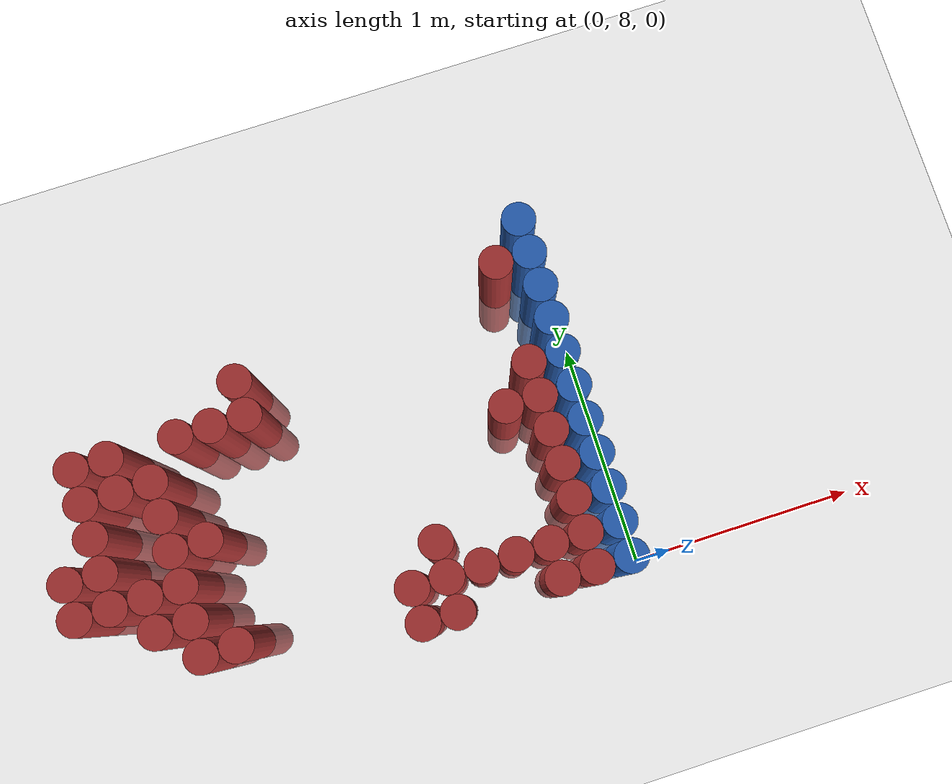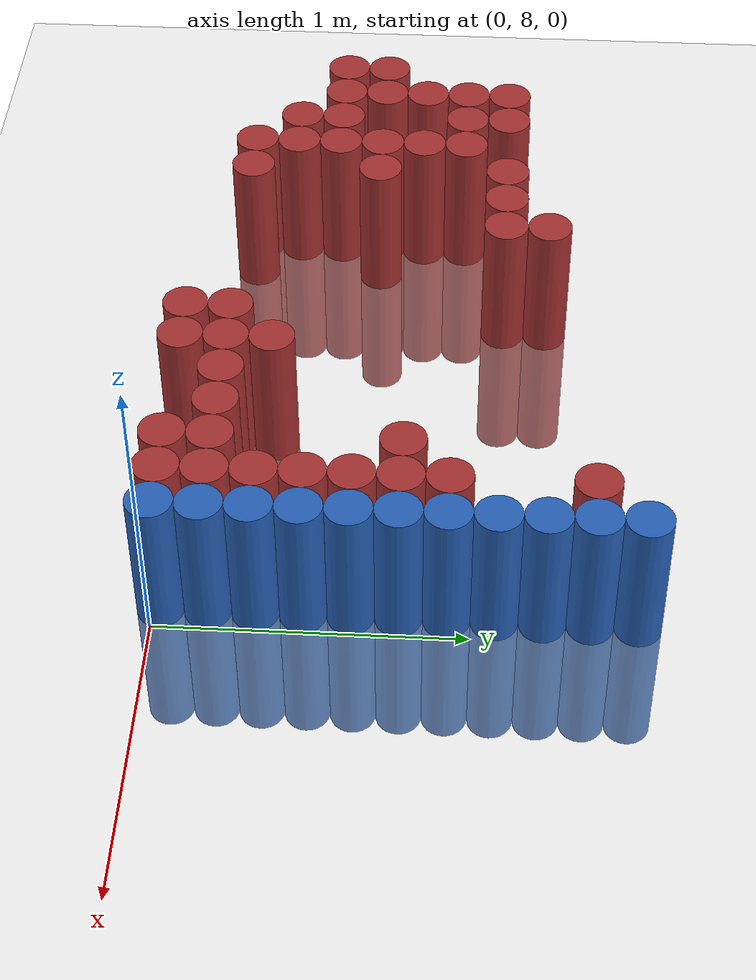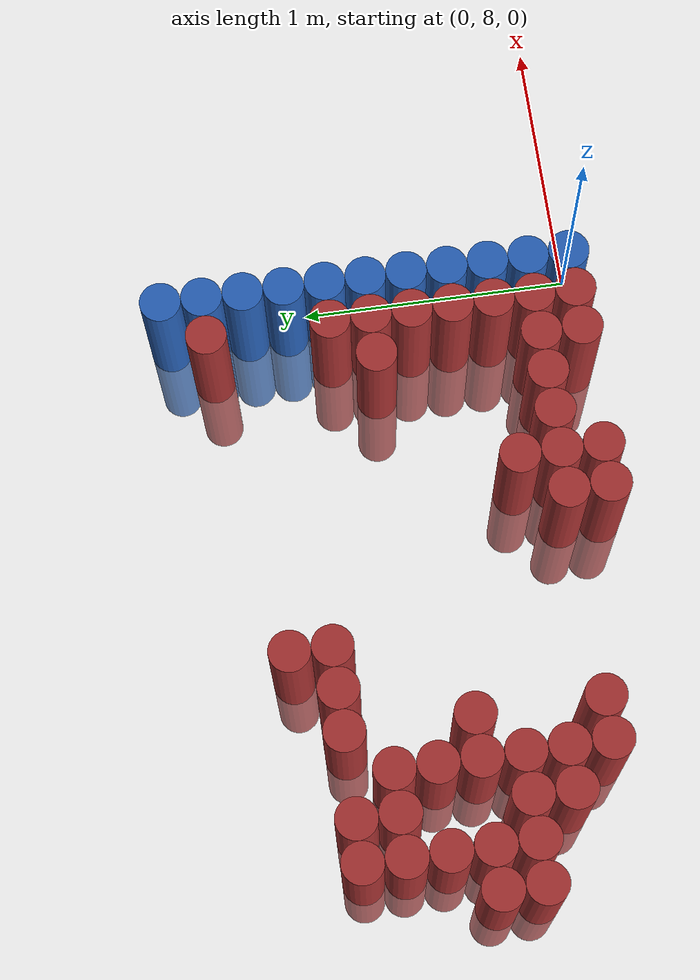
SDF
<sdf version="1.6">
 <world name="default">
  <model name="ground_plane">
   <static>1</static>
   <link name="link">
    <collision name="collision">
     <geometry><plane><normal>0 0 1</normal><size>100 100</size></plane></geometry>
     <surface><friction><ode><mu>100</mu><mu2>50</mu2></ode></friction></surface>
    </collision>
    <visual name="visual">
     <cast_shadows>0</cast_shadows>
     <geometry><plane><normal>0 0 1</normal><size>100 100</size></plane></geometry>
     <material>
      <script><uri>file://media/materials/scripts/gazebo.material</uri><name>Gazebo/Grey</name></script>
     </material>
    </visual>
   </link>
  </model>
  <model name="unit_cylinder_174">
   <static>1</static>
   <pose>-2.325000 8.475000 0.000000 0.000000 0.000000 0.000000</pose>
   <link name="link">
    <inertial>
     <mass>1</mass>
     <inertia><ixx>0.145833</ixx><ixy>0</ixy><ixz>0</ixz><iyy>0.145833</iyy><iyz>0</iyz><izz>0.125</izz></inertia>
    </inertial>
    <collision name="collision">
     <geometry><cylinder><radius>0.075000</radius><length>1</length></cylinder></geometry>
    </collision>
    <visual name="visual">
     <geometry><cylinder><radius>0.075000</radius><length>1</length></cylinder></geometry>
     <material>
      <ambient>0.648000 0.192000 0.192000 1</ambient>
      <diffuse>0.648000 0.192000 0.192000 1</diffuse>
     </material>
     <material>
      <script><name>Gazebo/Grey</name><uri>file://media/materials/scripts/gazebo.material</uri></script>
     </material>
    </visual>
   </link>
  </model>
  <model name="unit_cylinder_175">
   <static>1</static>
   <pose>-2.325000 8.625000 0.000000 0.000000 0.000000 0.000000</pose>
   <link name="link">
    <inertial>
     <mass>1</mass>
     <inertia><ixx>0.145833</ixx><ixy>0</ixy><ixz>0</ixz><iyy>0.145833</iyy><iyz>0</iyz><izz>0.125</izz></inertia>
    </inertial>
    <collision name="collision">
     <geometry><cylinder><radius>0.075000</radius><length>1</length></cylinder></geometry>
    </collision>
    <visual name="visual">
     <geometry><cylinder><radius>0.075000</radius><length>1</length></cylinder></geometry>
     <material>
      <ambient>0.648000 0.192000 0.192000 1</ambient>
      <diffuse>0.648000 0.192000 0.192000 1</diffuse>
     </material>
     <material>
      <script><name>Gazebo/Grey</name><uri>file://media/materials/scripts/gazebo.material</uri></script>
     </material>
    </visual>
   </link>
  </model>
  <model name="unit_cylinder_179">
   <static>1</static>
   <pose>-2.175000 8.475000 0.000000 0.000000 0.000000 0.000000</pose>
   <link name="link">
    <inertial>
     <mass>1</mass>
     <inertia><ixx>0.145833</ixx><ixy>0</ixy><ixz>0</ixz><iyy>0.145833</iyy><iyz>0</iyz><izz>0.125</izz></inertia>
    </inertial>
    <collision name="collision">
     <geometry><cylinder><radius>0.075000</radius><length>1</length></cylinder></geometry>
    </collision>
    <visual name="visual">
     <geometry><cylinder><radius>0.075000</radius><length>1</length></cylinder></geometry>
     <material>
      <ambient>0.648000 0.192000 0.192000 1</ambient>
      <diffuse>0.648000 0.192000 0.192000 1</diffuse>
     </material>
     <material>
      <script><name>Gazebo/Grey</name><uri>file://media/materials/scripts/gazebo.material</uri></script>
     </material>
    </visual>
   </link>
  </model>
  <model name="unit_cylinder_180">
   <static>1</static>
   <pose>-2.175000 8.625000 0.000000 0.000000 0.000000 0.000000</pose>
   <link name="link">
    <inertial>
     <mass>1</mass>
     <inertia><ixx>0.145833</ixx><ixy>0</ixy><ixz>0</ixz><iyy>0.145833</iyy><iyz>0</iyz><izz>0.125</izz></inertia>
    </inertial>
    <collision name="collision">
     <geometry><cylinder><radius>0.075000</radius><length>1</length></cylinder></geometry>
    </collision>
    <visual name="visual">
     <geometry><cylinder><radius>0.075000</radius><length>1</length></cylinder></geometry>
     <material>
      <ambient>0.648000 0.192000 0.192000 1</ambient>
      <diffuse>0.648000 0.192000 0.192000 1</diffuse>
     </material>
     <material>
      <script><name>Gazebo/Grey</name><uri>file://media/materials/scripts/gazebo.material</uri></script>
     </material>
    </visual>
   </link>
  </model>
  <model name="unit_cylinder_181">
   <static>1</static>
   <pose>-2.175000 8.775000 0.000000 0.000000 0.000000 0.000000</pose>
   <link name="link">
    <inertial>
     <mass>1</mass>
     <inertia><ixx>0.145833</ixx><ixy>0</ixy><ixz>0</ixz><iyy>0.145833</iyy><iyz>0</iyz><izz>0.125</izz></inertia>
    </inertial>
    <collision name="collision">
     <geometry><cylinder><radius>0.075000</radius><length>1</length></cylinder></geometry>
    </collision>
    <visual name="visual">
     <geometry><cylinder><radius>0.075000</radius><length>1</length></cylinder></geometry>
     <material>
      <ambient>0.648000 0.192000 0.192000 1</ambient>
      <diffuse>0.648000 0.192000 0.192000 1</diffuse>
     </material>
     <material>
      <script><name>Gazebo/Grey</name><uri>file://media/materials/scripts/gazebo.material</uri></script>
     </material>
    </visual>
   </link>
  </model>
  <model name="unit_cylinder_182">
   <static>1</static>
   <pose>-2.175000 8.925000 0.000000 0.000000 0.000000 0.000000</pose>
   <link name="link">
    <inertial>
     <mass>1</mass>
     <inertia><ixx>0.145833</ixx><ixy>0</ixy><ixz>0</ixz><iyy>0.145833</iyy><iyz>0</iyz><izz>0.125</izz></inertia>
    </inertial>
    <collision name="collision">
     <geometry><cylinder><radius>0.075000</radius><length>1</length></cylinder></geometry>
    </collision>
    <visual name="visual">
     <geometry><cylinder><radius>0.075000</radius><length>1</length></cylinder></geometry>
     <material>
      <ambient>0.648000 0.192000 0.192000 1</ambient>
      <diffuse>0.648000 0.192000 0.192000 1</diffuse>
     </material>
     <material>
      <script><name>Gazebo/Grey</name><uri>file://media/materials/scripts/gazebo.material</uri></script>
     </material>
    </visual>
   </link>
  </model>
  <model name="unit_cylinder_183">
   <static>1</static>
   <pose>-2.175000 9.075000 0.000000 0.000000 0.000000 0.000000</pose>
   <link name="link">
    <inertial>
     <mass>1</mass>
     <inertia><ixx>0.145833</ixx><ixy>0</ixy><ixz>0</ixz><iyy>0.145833</iyy><iyz>0</iyz><izz>0.125</izz></inertia>
    </inertial>
    <collision name="collision">
     <geometry><cylinder><radius>0.075000</radius><length>1</length></cylinder></geometry>
    </collision>
    <visual name="visual">
     <geometry><cylinder><radius>0.075000</radius><length>1</length></cylinder></geometry>
     <material>
      <ambient>0.648000 0.192000 0.192000 1</ambient>
      <diffuse>0.648000 0.192000 0.192000 1</diffuse>
     </material>
     <material>
      <script><name>Gazebo/Grey</name><uri>file://media/materials/scripts/gazebo.material</uri></script>
     </material>
    </visual>
   </link>
  </model>
  <model name="unit_cylinder_186">
   <static>1</static>
   <pose>-2.025000 8.325000 0.000000 0.000000 0.000000 0.000000</pose>
   <link name="link">
    <inertial>
     <mass>1</mass>
     <inertia><ixx>0.145833</ixx><ixy>0</ixy><ixz>0</ixz><iyy>0.145833</iyy><iyz>0</iyz><izz>0.125</izz></inertia>
    </inertial>
    <collision name="collision">
     <geometry><cylinder><radius>0.075000</radius><length>1</length></cylinder></geometry>
    </collision>
    <visual name="visual">
     <geometry><cylinder><radius>0.075000</radius><length>1</length></cylinder></geometry>
     <material>
      <ambient>0.648000 0.192000 0.192000 1</ambient>
      <diffuse>0.648000 0.192000 0.192000 1</diffuse>
     </material>
     <material>
      <script><name>Gazebo/Grey</name><uri>file://media/materials/scripts/gazebo.material</uri></script>
     </material>
    </visual>
   </link>
  </model>
  <model name="unit_cylinder_187">
   <static>1</static>
   <pose>-2.025000 8.475000 0.000000 0.000000 0.000000 0.000000</pose>
   <link name="link">
    <inertial>
     <mass>1</mass>
     <inertia><ixx>0.145833</ixx><ixy>0</ixy><ixz>0</ixz><iyy>0.145833</iyy><iyz>0</iyz><izz>0.125</izz></inertia>
    </inertial>
    <collision name="collision">
     <geometry><cylinder><radius>0.075000</radius><length>1</length></cylinder></geometry>
    </collision>
    <visual name="visual">
     <geometry><cylinder><radius>0.075000</radius><length>1</length></cylinder></geometry>
     <material>
      <ambient>0.648000 0.192000 0.192000 1</ambient>
      <diffuse>0.648000 0.192000 0.192000 1</diffuse>
     </material>
     <material>
      <script><name>Gazebo/Grey</name><uri>file://media/materials/scripts/gazebo.material</uri></script>
     </material>
    </visual>
   </link>
  </model>
  <model name="unit_cylinder_188">
   <static>1</static>
   <pose>-2.025000 8.925000 0.000000 0.000000 0.000000 0.000000</pose>
   <link name="link">
    <inertial>
     <mass>1</mass>
     <inertia><ixx>0.145833</ixx><ixy>0</ixy><ixz>0</ixz><iyy>0.145833</iyy><iyz>0</iyz><izz>0.125</izz></inertia>
    </inertial>
    <collision name="collision">
     <geometry><cylinder><radius>0.075000</radius><length>1</length></cylinder></geometry>
    </collision>
    <visual name="visual">
     <geometry><cylinder><radius>0.075000</radius><length>1</length></cylinder></geometry>
     <material>
      <ambient>0.648000 0.192000 0.192000 1</ambient>
      <diffuse>0.648000 0.192000 0.192000 1</diffuse>
     </material>
     <material>
      <script><name>Gazebo/Grey</name><uri>file://media/materials/scripts/gazebo.material</uri></script>
     </material>
    </visual>
   </link>
  </model>
  <model name="unit_cylinder_189">
   <static>1</static>
   <pose>-2.025000 9.075000 0.000000 0.000000 0.000000 0.000000</pose>
   <link name="link">
    <inertial>
     <mass>1</mass>
     <inertia><ixx>0.145833</ixx><ixy>0</ixy><ixz>0</ixz><iyy>0.145833</iyy><iyz>0</iyz><izz>0.125</izz></inertia>
    </inertial>
    <collision name="collision">
     <geometry><cylinder><radius>0.075000</radius><length>1</length></cylinder></geometry>
    </collision>
    <visual name="visual">
     <geometry><cylinder><radius>0.075000</radius><length>1</length></cylinder></geometry>
     <material>
      <ambient>0.648000 0.192000 0.192000 1</ambient>
      <diffuse>0.648000 0.192000 0.192000 1</diffuse>
     </material>
     <material>
      <script><name>Gazebo/Grey</name><uri>file://media/materials/scripts/gazebo.material</uri></script>
     </material>
    </visual>
   </link>
  </model>
  <model name="unit_cylinder_193">
   <static>1</static>
   <pose>-1.875000 8.175000 0.000000 0.000000 0.000000 0.000000</pose>
   <link name="link">
    <inertial>
     <mass>1</mass>
     <inertia><ixx>0.145833</ixx><ixy>0</ixy><ixz>0</ixz><iyy>0.145833</iyy><iyz>0</iyz><izz>0.125</izz></inertia>
    </inertial>
    <collision name="collision">
     <geometry><cylinder><radius>0.075000</radius><length>1</length></cylinder></geometry>
    </collision>
    <visual name="visual">
     <geometry><cylinder><radius>0.075000</radius><length>1</length></cylinder></geometry>
     <material>
      <ambient>0.648000 0.192000 0.192000 1</ambient>
      <diffuse>0.648000 0.192000 0.192000 1</diffuse>
     </material>
     <material>
      <script><name>Gazebo/Grey</name><uri>file://media/materials/scripts/gazebo.material</uri></script>
     </material>
    </visual>
   </link>
  </model>
  <model name="unit_cylinder_194">
   <static>1</static>
   <pose>-1.875000 8.325000 0.000000 0.000000 0.000000 0.000000</pose>
   <link name="link">
    <inertial>
     <mass>1</mass>
     <inertia><ixx>0.145833</ixx><ixy>0</ixy><ixz>0</ixz><iyy>0.145833</iyy><iyz>0</iyz><izz>0.125</izz></inertia>
    </inertial>
    <collision name="collision">
     <geometry><cylinder><radius>0.075000</radius><length>1</length></cylinder></geometry>
    </collision>
    <visual name="visual">
     <geometry><cylinder><radius>0.075000</radius><length>1</length></cylinder></geometry>
     <material>
      <ambient>0.648000 0.192000 0.192000 1</ambient>
      <diffuse>0.648000 0.192000 0.192000 1</diffuse>
     </material>
     <material>
      <script><name>Gazebo/Grey</name><uri>file://media/materials/scripts/gazebo.material</uri></script>
     </material>
    </visual>
   </link>
  </model>
  <model name="unit_cylinder_195">
   <static>1</static>
   <pose>-1.875000 8.475000 0.000000 0.000000 0.000000 0.000000</pose>
   <link name="link">
    <inertial>
     <mass>1</mass>
     <inertia><ixx>0.145833</ixx><ixy>0</ixy><ixz>0</ixz><iyy>0.145833</iyy><iyz>0</iyz><izz>0.125</izz></inertia>
    </inertial>
    <collision name="collision">
     <geometry><cylinder><radius>0.075000</radius><length>1</length></cylinder></geometry>
    </collision>
    <visual name="visual">
     <geometry><cylinder><radius>0.075000</radius><length>1</length></cylinder></geometry>
     <material>
      <ambient>0.648000 0.192000 0.192000 1</ambient>
      <diffuse>0.648000 0.192000 0.192000 1</diffuse>
     </material>
     <material>
      <script><name>Gazebo/Grey</name><uri>file://media/materials/scripts/gazebo.material</uri></script>
     </material>
    </visual>
   </link>
  </model>
  <model name="unit_cylinder_196">
   <static>1</static>
   <pose>-1.875000 8.625000 0.000000 0.000000 0.000000 0.000000</pose>
   <link name="link">
    <inertial>
     <mass>1</mass>
     <inertia><ixx>0.145833</ixx><ixy>0</ixy><ixz>0</ixz><iyy>0.145833</iyy><iyz>0</iyz><izz>0.125</izz></inertia>
    </inertial>
    <collision name="collision">
     <geometry><cylinder><radius>0.075000</radius><length>1</length></cylinder></geometry>
    </collision>
    <visual name="visual">
     <geometry><cylinder><radius>0.075000</radius><length>1</length></cylinder></geometry>
     <material>
      <ambient>0.648000 0.192000 0.192000 1</ambient>
      <diffuse>0.648000 0.192000 0.192000 1</diffuse>
     </material>
     <material>
      <script><name>Gazebo/Grey</name><uri>file://media/materials/scripts/gazebo.material</uri></script>
     </material>
    </visual>
   </link>
  </model>
  <model name="unit_cylinder_197">
   <static>1</static>
   <pose>-1.875000 8.775000 0.000000 0.000000 0.000000 0.000000</pose>
   <link name="link">
    <inertial>
     <mass>1</mass>
     <inertia><ixx>0.145833</ixx><ixy>0</ixy><ixz>0</ixz><iyy>0.145833</iyy><iyz>0</iyz><izz>0.125</izz></inertia>
    </inertial>
    <collision name="collision">
     <geometry><cylinder><radius>0.075000</radius><length>1</length></cylinder></geometry>
    </collision>
    <visual name="visual">
     <geometry><cylinder><radius>0.075000</radius><length>1</length></cylinder></geometry>
     <material>
      <ambient>0.648000 0.192000 0.192000 1</ambient>
      <diffuse>0.648000 0.192000 0.192000 1</diffuse>
     </material>
     <material>
      <script><name>Gazebo/Grey</name><uri>file://media/materials/scripts/gazebo.material</uri></script>
     </material>
    </visual>
   </link>
  </model>
  <model name="unit_cylinder_198">
   <static>1</static>
   <pose>-1.875000 8.925000 0.000000 0.000000 0.000000 0.000000</pose>
   <link name="link">
    <inertial>
     <mass>1</mass>
     <inertia><ixx>0.145833</ixx><ixy>0</ixy><ixz>0</ixz><iyy>0.145833</iyy><iyz>0</iyz><izz>0.125</izz></inertia>
    </inertial>
    <collision name="collision">
     <geometry><cylinder><radius>0.075000</radius><length>1</length></cylinder></geometry>
    </collision>
    <visual name="visual">
     <geometry><cylinder><radius>0.075000</radius><length>1</length></cylinder></geometry>
     <material>
      <ambient>0.648000 0.192000 0.192000 1</ambient>
      <diffuse>0.648000 0.192000 0.192000 1</diffuse>
     </material>
     <material>
      <script><name>Gazebo/Grey</name><uri>file://media/materials/scripts/gazebo.material</uri></script>
     </material>
    </visual>
   </link>
  </model>
  <model name="unit_cylinder_203">
   <static>1</static>
   <pose>-1.725000 8.175000 0.000000 0.000000 0.000000 0.000000</pose>
   <link name="link">
    <inertial>
     <mass>1</mass>
     <inertia><ixx>0.145833</ixx><ixy>0</ixy><ixz>0</ixz><iyy>0.145833</iyy><iyz>0</iyz><izz>0.125</izz></inertia>
    </inertial>
    <collision name="collision">
     <geometry><cylinder><radius>0.075000</radius><length>1</length></cylinder></geometry>
    </collision>
    <visual name="visual">
     <geometry><cylinder><radius>0.075000</radius><length>1</length></cylinder></geometry>
     <material>
      <ambient>0.648000 0.192000 0.192000 1</ambient>
      <diffuse>0.648000 0.192000 0.192000 1</diffuse>
     </material>
     <material>
      <script><name>Gazebo/Grey</name><uri>file://media/materials/scripts/gazebo.material</uri></script>
     </material>
    </visual>
   </link>
  </model>
  <model name="unit_cylinder_204">
   <static>1</static>
   <pose>-1.725000 8.625000 0.000000 0.000000 0.000000 0.000000</pose>
   <link name="link">
    <inertial>
     <mass>1</mass>
     <inertia><ixx>0.145833</ixx><ixy>0</ixy><ixz>0</ixz><iyy>0.145833</iyy><iyz>0</iyz><izz>0.125</izz></inertia>
    </inertial>
    <collision name="collision">
     <geometry><cylinder><radius>0.075000</radius><length>1</length></cylinder></geometry>
    </collision>
    <visual name="visual">
     <geometry><cylinder><radius>0.075000</radius><length>1</length></cylinder></geometry>
     <material>
      <ambient>0.648000 0.192000 0.192000 1</ambient>
      <diffuse>0.648000 0.192000 0.192000 1</diffuse>
     </material>
     <material>
      <script><name>Gazebo/Grey</name><uri>file://media/materials/scripts/gazebo.material</uri></script>
     </material>
    </visual>
   </link>
  </model>
  <model name="unit_cylinder_205">
   <static>1</static>
   <pose>-1.725000 9.075000 0.000000 0.000000 0.000000 0.000000</pose>
   <link name="link">
    <inertial>
     <mass>1</mass>
     <inertia><ixx>0.145833</ixx><ixy>0</ixy><ixz>0</ixz><iyy>0.145833</iyy><iyz>0</iyz><izz>0.125</izz></inertia>
    </inertial>
    <collision name="collision">
     <geometry><cylinder><radius>0.075000</radius><length>1</length></cylinder></geometry>
    </collision>
    <visual name="visual">
     <geometry><cylinder><radius>0.075000</radius><length>1</length></cylinder></geometry>
     <material>
      <ambient>0.648000 0.192000 0.192000 1</ambient>
      <diffuse>0.648000 0.192000 0.192000 1</diffuse>
     </material>
     <material>
      <script><name>Gazebo/Grey</name><uri>file://media/materials/scripts/gazebo.material</uri></script>
     </material>
    </visual>
   </link>
  </model>
  <model name="unit_cylinder_210">
   <static>1</static>
   <pose>-1.575000 9.075000 0.000000 0.000000 0.000000 0.000000</pose>
   <link name="link">
    <inertial>
     <mass>1</mass>
     <inertia><ixx>0.145833</ixx><ixy>0</ixy><ixz>0</ixz><iyy>0.145833</iyy><iyz>0</iyz><izz>0.125</izz></inertia>
    </inertial>
    <collision name="collision">
     <geometry><cylinder><radius>0.075000</radius><length>1</length></cylinder></geometry>
    </collision>
    <visual name="visual">
     <geometry><cylinder><radius>0.075000</radius><length>1</length></cylinder></geometry>
     <material>
      <ambient>0.648000 0.192000 0.192000 1</ambient>
      <diffuse>0.648000 0.192000 0.192000 1</diffuse>
     </material>
     <material>
      <script><name>Gazebo/Grey</name><uri>file://media/materials/scripts/gazebo.material</uri></script>
     </material>
    </visual>
   </link>
  </model>
  <model name="unit_cylinder_216">
   <static>1</static>
   <pose>-1.425000 9.075000 0.000000 0.000000 0.000000 0.000000</pose>
   <link name="link">
    <inertial>
     <mass>1</mass>
     <inertia><ixx>0.145833</ixx><ixy>0</ixy><ixz>0</ixz><iyy>0.145833</iyy><iyz>0</iyz><izz>0.125</izz></inertia>
    </inertial>
    <collision name="collision">
     <geometry><cylinder><radius>0.075000</radius><length>1</length></cylinder></geometry>
    </collision>
    <visual name="visual">
     <geometry><cylinder><radius>0.075000</radius><length>1</length></cylinder></geometry>
     <material>
      <ambient>0.648000 0.192000 0.192000 1</ambient>
      <diffuse>0.648000 0.192000 0.192000 1</diffuse>
     </material>
     <material>
      <script><name>Gazebo/Grey</name><uri>file://media/materials/scripts/gazebo.material</uri></script>
     </material>
    </visual>
   </link>
  </model>
  <model name="unit_cylinder_217">
   <static>1</static>
   <pose>-1.425000 9.225000 0.000000 0.000000 0.000000 0.000000</pose>
   <link name="link">
    <inertial>
     <mass>1</mass>
     <inertia><ixx>0.145833</ixx><ixy>0</ixy><ixz>0</ixz><iyy>0.145833</iyy><iyz>0</iyz><izz>0.125</izz></inertia>
    </inertial>
    <collision name="collision">
     <geometry><cylinder><radius>0.075000</radius><length>1</length></cylinder></geometry>
    </collision>
    <visual name="visual">
     <geometry><cylinder><radius>0.075000</radius><length>1</length></cylinder></geometry>
     <material>
      <ambient>0.648000 0.192000 0.192000 1</ambient>
      <diffuse>0.648000 0.192000 0.192000 1</diffuse>
     </material>
     <material>
      <script><name>Gazebo/Grey</name><uri>file://media/materials/scripts/gazebo.material</uri></script>
     </material>
    </visual>
   </link>
  </model>
  <model name="unit_cylinder_232">
   <static>1</static>
   <pose>-0.975000 8.025000 0.000000 0.000000 0.000000 0.000000</pose>
   <link name="link">
    <inertial>
     <mass>1</mass>
     <inertia><ixx>0.145833</ixx><ixy>0</ixy><ixz>0</ixz><iyy>0.145833</iyy><iyz>0</iyz><izz>0.125</izz></inertia>
    </inertial>
    <collision name="collision">
     <geometry><cylinder><radius>0.075000</radius><length>1</length></cylinder></geometry>
    </collision>
    <visual name="visual">
     <geometry><cylinder><radius>0.075000</radius><length>1</length></cylinder></geometry>
     <material>
      <ambient>0.648000 0.192000 0.192000 1</ambient>
      <diffuse>0.648000 0.192000 0.192000 1</diffuse>
     </material>
     <material>
      <script><name>Gazebo/Grey</name><uri>file://media/materials/scripts/gazebo.material</uri></script>
     </material>
    </visual>
   </link>
  </model>
  <model name="unit_cylinder_233">
   <static>1</static>
   <pose>-0.975000 8.175000 0.000000 0.000000 0.000000 0.000000</pose>
   <link name="link">
    <inertial>
     <mass>1</mass>
     <inertia><ixx>0.145833</ixx><ixy>0</ixy><ixz>0</ixz><iyy>0.145833</iyy><iyz>0</iyz><izz>0.125</izz></inertia>
    </inertial>
    <collision name="collision">
     <geometry><cylinder><radius>0.075000</radius><length>1</length></cylinder></geometry>
    </collision>
    <visual name="visual">
     <geometry><cylinder><radius>0.075000</radius><length>1</length></cylinder></geometry>
     <material>
      <ambient>0.648000 0.192000 0.192000 1</ambient>
      <diffuse>0.648000 0.192000 0.192000 1</diffuse>
     </material>
     <material>
      <script><name>Gazebo/Grey</name><uri>file://media/materials/scripts/gazebo.material</uri></script>
     </material>
    </visual>
   </link>
  </model>
  <model name="unit_cylinder_239">
   <static>1</static>
   <pose>-0.825000 8.025000 0.000000 0.000000 0.000000 0.000000</pose>
   <link name="link">
    <inertial>
     <mass>1</mass>
     <inertia><ixx>0.145833</ixx><ixy>0</ixy><ixz>0</ixz><iyy>0.145833</iyy><iyz>0</iyz><izz>0.125</izz></inertia>
    </inertial>
    <collision name="collision">
     <geometry><cylinder><radius>0.075000</radius><length>1</length></cylinder></geometry>
    </collision>
    <visual name="visual">
     <geometry><cylinder><radius>0.075000</radius><length>1</length></cylinder></geometry>
     <material>
      <ambient>0.648000 0.192000 0.192000 1</ambient>
      <diffuse>0.648000 0.192000 0.192000 1</diffuse>
     </material>
     <material>
      <script><name>Gazebo/Grey</name><uri>file://media/materials/scripts/gazebo.material</uri></script>
     </material>
    </visual>
   </link>
  </model>
  <model name="unit_cylinder_240">
   <static>1</static>
   <pose>-0.825000 8.175000 0.000000 0.000000 0.000000 0.000000</pose>
   <link name="link">
    <inertial>
     <mass>1</mass>
     <inertia><ixx>0.145833</ixx><ixy>0</ixy><ixz>0</ixz><iyy>0.145833</iyy><iyz>0</iyz><izz>0.125</izz></inertia>
    </inertial>
    <collision name="collision">
     <geometry><cylinder><radius>0.075000</radius><length>1</length></cylinder></geometry>
    </collision>
    <visual name="visual">
     <geometry><cylinder><radius>0.075000</radius><length>1</length></cylinder></geometry>
     <material>
      <ambient>0.648000 0.192000 0.192000 1</ambient>
      <diffuse>0.648000 0.192000 0.192000 1</diffuse>
     </material>
     <material>
      <script><name>Gazebo/Grey</name><uri>file://media/materials/scripts/gazebo.material</uri></script>
     </material>
    </visual>
   </link>
  </model>
  <model name="unit_cylinder_241">
   <static>1</static>
   <pose>-0.825000 8.325000 0.000000 0.000000 0.000000 0.000000</pose>
   <link name="link">
    <inertial>
     <mass>1</mass>
     <inertia><ixx>0.145833</ixx><ixy>0</ixy><ixz>0</ixz><iyy>0.145833</iyy><iyz>0</iyz><izz>0.125</izz></inertia>
    </inertial>
    <collision name="collision">
     <geometry><cylinder><radius>0.075000</radius><length>1</length></cylinder></geometry>
    </collision>
    <visual name="visual">
     <geometry><cylinder><radius>0.075000</radius><length>1</length></cylinder></geometry>
     <material>
      <ambient>0.648000 0.192000 0.192000 1</ambient>
      <diffuse>0.648000 0.192000 0.192000 1</diffuse>
     </material>
     <material>
      <script><name>Gazebo/Grey</name><uri>file://media/materials/scripts/gazebo.material</uri></script>
     </material>
    </visual>
   </link>
  </model>
  <model name="unit_cylinder_246">
   <static>1</static>
   <pose>-0.675000 8.175000 0.000000 0.000000 0.000000 0.000000</pose>
   <link name="link">
    <inertial>
     <mass>1</mass>
     <inertia><ixx>0.145833</ixx><ixy>0</ixy><ixz>0</ixz><iyy>0.145833</iyy><iyz>0</iyz><izz>0.125</izz></inertia>
    </inertial>
    <collision name="collision">
     <geometry><cylinder><radius>0.075000</radius><length>1</length></cylinder></geometry>
    </collision>
    <visual name="visual">
     <geometry><cylinder><radius>0.075000</radius><length>1</length></cylinder></geometry>
     <material>
      <ambient>0.648000 0.192000 0.192000 1</ambient>
      <diffuse>0.648000 0.192000 0.192000 1</diffuse>
     </material>
     <material>
      <script><name>Gazebo/Grey</name><uri>file://media/materials/scripts/gazebo.material</uri></script>
     </material>
    </visual>
   </link>
  </model>
  <model name="unit_cylinder_252">
   <static>1</static>
   <pose>-0.525000 8.175000 0.000000 0.000000 0.000000 0.000000</pose>
   <link name="link">
    <inertial>
     <mass>1</mass>
     <inertia><ixx>0.145833</ixx><ixy>0</ixy><ixz>0</ixz><iyy>0.145833</iyy><iyz>0</iyz><izz>0.125</izz></inertia>
    </inertial>
    <collision name="collision">
     <geometry><cylinder><radius>0.075000</radius><length>1</length></cylinder></geometry>
    </collision>
    <visual name="visual">
     <geometry><cylinder><radius>0.075000</radius><length>1</length></cylinder></geometry>
     <material>
      <ambient>0.648000 0.192000 0.192000 1</ambient>
      <diffuse>0.648000 0.192000 0.192000 1</diffuse>
     </material>
     <material>
      <script><name>Gazebo/Grey</name><uri>file://media/materials/scripts/gazebo.material</uri></script>
     </material>
    </visual>
   </link>
  </model>
  <model name="unit_cylinder_258">
   <static>1</static>
   <pose>-0.375000 8.025000 0.000000 0.000000 0.000000 0.000000</pose>
   <link name="link">
    <inertial>
     <mass>1</mass>
     <inertia><ixx>0.145833</ixx><ixy>0</ixy><ixz>0</ixz><iyy>0.145833</iyy><iyz>0</iyz><izz>0.125</izz></inertia>
    </inertial>
    <collision name="collision">
     <geometry><cylinder><radius>0.075000</radius><length>1</length></cylinder></geometry>
    </collision>
    <visual name="visual">
     <geometry><cylinder><radius>0.075000</radius><length>1</length></cylinder></geometry>
     <material>
      <ambient>0.648000 0.192000 0.192000 1</ambient>
      <diffuse>0.648000 0.192000 0.192000 1</diffuse>
     </material>
     <material>
      <script><name>Gazebo/Grey</name><uri>file://media/materials/scripts/gazebo.material</uri></script>
     </material>
    </visual>
   </link>
  </model>
  <model name="unit_cylinder_259">
   <static>1</static>
   <pose>-0.375000 8.175000 0.000000 0.000000 0.000000 0.000000</pose>
   <link name="link">
    <inertial>
     <mass>1</mass>
     <inertia><ixx>0.145833</ixx><ixy>0</ixy><ixz>0</ixz><iyy>0.145833</iyy><iyz>0</iyz><izz>0.125</izz></inertia>
    </inertial>
    <collision name="collision">
     <geometry><cylinder><radius>0.075000</radius><length>1</length></cylinder></geometry>
    </collision>
    <visual name="visual">
     <geometry><cylinder><radius>0.075000</radius><length>1</length></cylinder></geometry>
     <material>
      <ambient>0.648000 0.192000 0.192000 1</ambient>
      <diffuse>0.648000 0.192000 0.192000 1</diffuse>
     </material>
     <material>
      <script><name>Gazebo/Grey</name><uri>file://media/materials/scripts/gazebo.material</uri></script>
     </material>
    </visual>
   </link>
  </model>
  <model name="unit_cylinder_260">
   <static>1</static>
   <pose>-0.375000 8.775000 0.000000 0.000000 0.000000 0.000000</pose>
   <link name="link">
    <inertial>
     <mass>1</mass>
     <inertia><ixx>0.145833</ixx><ixy>0</ixy><ixz>0</ixz><iyy>0.145833</iyy><iyz>0</iyz><izz>0.125</izz></inertia>
    </inertial>
    <collision name="collision">
     <geometry><cylinder><radius>0.075000</radius><length>1</length></cylinder></geometry>
    </collision>
    <visual name="visual">
     <geometry><cylinder><radius>0.075000</radius><length>1</length></cylinder></geometry>
     <material>
      <ambient>0.648000 0.192000 0.192000 1</ambient>
      <diffuse>0.648000 0.192000 0.192000 1</diffuse>
     </material>
     <material>
      <script><name>Gazebo/Grey</name><uri>file://media/materials/scripts/gazebo.material</uri></script>
     </material>
    </visual>
   </link>
  </model>
  <model name="unit_cylinder_271">
   <static>1</static>
   <pose>-0.225000 8.025000 0.000000 0.000000 0.000000 0.000000</pose>
   <link name="link">
    <inertial>
     <mass>1</mass>
     <inertia><ixx>0.145833</ixx><ixy>0</ixy><ixz>0</ixz><iyy>0.145833</iyy><iyz>0</iyz><izz>0.125</izz></inertia>
    </inertial>
    <collision name="collision">
     <geometry><cylinder><radius>0.075000</radius><length>1</length></cylinder></geometry>
    </collision>
    <visual name="visual">
     <geometry><cylinder><radius>0.075000</radius><length>1</length></cylinder></geometry>
     <material>
      <ambient>0.648000 0.192000 0.192000 1</ambient>
      <diffuse>0.648000 0.192000 0.192000 1</diffuse>
     </material>
     <material>
      <script><name>Gazebo/Grey</name><uri>file://media/materials/scripts/gazebo.material</uri></script>
     </material>
    </visual>
   </link>
  </model>
  <model name="unit_cylinder_272">
   <static>1</static>
   <pose>-0.225000 8.175000 0.000000 0.000000 0.000000 0.000000</pose>
   <link name="link">
    <inertial>
     <mass>1</mass>
     <inertia><ixx>0.145833</ixx><ixy>0</ixy><ixz>0</ixz><iyy>0.145833</iyy><iyz>0</iyz><izz>0.125</izz></inertia>
    </inertial>
    <collision name="collision">
     <geometry><cylinder><radius>0.075000</radius><length>1</length></cylinder></geometry>
    </collision>
    <visual name="visual">
     <geometry><cylinder><radius>0.075000</radius><length>1</length></cylinder></geometry>
     <material>
      <ambient>0.648000 0.192000 0.192000 1</ambient>
      <diffuse>0.648000 0.192000 0.192000 1</diffuse>
     </material>
     <material>
      <script><name>Gazebo/Grey</name><uri>file://media/materials/scripts/gazebo.material</uri></script>
     </material>
    </visual>
   </link>
  </model>
  <model name="unit_cylinder_273">
   <static>1</static>
   <pose>-0.225000 8.325000 0.000000 0.000000 0.000000 0.000000</pose>
   <link name="link">
    <inertial>
     <mass>1</mass>
     <inertia><ixx>0.145833</ixx><ixy>0</ixy><ixz>0</ixz><iyy>0.145833</iyy><iyz>0</iyz><izz>0.125</izz></inertia>
    </inertial>
    <collision name="collision">
     <geometry><cylinder><radius>0.075000</radius><length>1</length></cylinder></geometry>
    </collision>
    <visual name="visual">
     <geometry><cylinder><radius>0.075000</radius><length>1</length></cylinder></geometry>
     <material>
      <ambient>0.648000 0.192000 0.192000 1</ambient>
      <diffuse>0.648000 0.192000 0.192000 1</diffuse>
     </material>
     <material>
      <script><name>Gazebo/Grey</name><uri>file://media/materials/scripts/gazebo.material</uri></script>
     </material>
    </visual>
   </link>
  </model>
  <model name="unit_cylinder_274">
   <static>1</static>
   <pose>-0.225000 8.475000 0.000000 0.000000 0.000000 0.000000</pose>
   <link name="link">
    <inertial>
     <mass>1</mass>
     <inertia><ixx>0.145833</ixx><ixy>0</ixy><ixz>0</ixz><iyy>0.145833</iyy><iyz>0</iyz><izz>0.125</izz></inertia>
    </inertial>
    <collision name="collision">
     <geometry><cylinder><radius>0.075000</radius><length>1</length></cylinder></geometry>
    </collision>
    <visual name="visual">
     <geometry><cylinder><radius>0.075000</radius><length>1</length></cylinder></geometry>
     <material>
      <ambient>0.648000 0.192000 0.192000 1</ambient>
      <diffuse>0.648000 0.192000 0.192000 1</diffuse>
     </material>
     <material>
      <script><name>Gazebo/Grey</name><uri>file://media/materials/scripts/gazebo.material</uri></script>
     </material>
    </visual>
   </link>
  </model>
  <model name="unit_cylinder_275">
   <static>1</static>
   <pose>-0.225000 8.625000 0.000000 0.000000 0.000000 0.000000</pose>
   <link name="link">
    <inertial>
     <mass>1</mass>
     <inertia><ixx>0.145833</ixx><ixy>0</ixy><ixz>0</ixz><iyy>0.145833</iyy><iyz>0</iyz><izz>0.125</izz></inertia>
    </inertial>
    <collision name="collision">
     <geometry><cylinder><radius>0.075000</radius><length>1</length></cylinder></geometry>
    </collision>
    <visual name="visual">
     <geometry><cylinder><radius>0.075000</radius><length>1</length></cylinder></geometry>
     <material>
      <ambient>0.648000 0.192000 0.192000 1</ambient>
      <diffuse>0.648000 0.192000 0.192000 1</diffuse>
     </material>
     <material>
      <script><name>Gazebo/Grey</name><uri>file://media/materials/scripts/gazebo.material</uri></script>
     </material>
    </visual>
   </link>
  </model>
  <model name="unit_cylinder_276">
   <static>1</static>
   <pose>-0.225000 8.775000 0.000000 0.000000 0.000000 0.000000</pose>
   <link name="link">
    <inertial>
     <mass>1</mass>
     <inertia><ixx>0.145833</ixx><ixy>0</ixy><ixz>0</ixz><iyy>0.145833</iyy><iyz>0</iyz><izz>0.125</izz></inertia>
    </inertial>
    <collision name="collision">
     <geometry><cylinder><radius>0.075000</radius><length>1</length></cylinder></geometry>
    </collision>
    <visual name="visual">
     <geometry><cylinder><radius>0.075000</radius><length>1</length></cylinder></geometry>
     <material>
      <ambient>0.648000 0.192000 0.192000 1</ambient>
      <diffuse>0.648000 0.192000 0.192000 1</diffuse>
     </material>
     <material>
      <script><name>Gazebo/Grey</name><uri>file://media/materials/scripts/gazebo.material</uri></script>
     </material>
    </visual>
   </link>
  </model>
  <model name="unit_cylinder_277">
   <static>1</static>
   <pose>-0.225000 8.925000 0.000000 0.000000 0.000000 0.000000</pose>
   <link name="link">
    <inertial>
     <mass>1</mass>
     <inertia><ixx>0.145833</ixx><ixy>0</ixy><ixz>0</ixz><iyy>0.145833</iyy><iyz>0</iyz><izz>0.125</izz></inertia>
    </inertial>
    <collision name="collision">
     <geometry><cylinder><radius>0.075000</radius><length>1</length></cylinder></geometry>
    </collision>
    <visual name="visual">
     <geometry><cylinder><radius>0.075000</radius><length>1</length></cylinder></geometry>
     <material>
      <ambient>0.648000 0.192000 0.192000 1</ambient>
      <diffuse>0.648000 0.192000 0.192000 1</diffuse>
     </material>
     <material>
      <script><name>Gazebo/Grey</name><uri>file://media/materials/scripts/gazebo.material</uri></script>
     </material>
    </visual>
   </link>
  </model>
  <model name="unit_cylinder_278">
   <static>1</static>
   <pose>-0.225000 9.375000 0.000000 0.000000 0.000000 0.000000</pose>
   <link name="link">
    <inertial>
     <mass>1</mass>
     <inertia><ixx>0.145833</ixx><ixy>0</ixy><ixz>0</ixz><iyy>0.145833</iyy><iyz>0</iyz><izz>0.125</izz></inertia>
    </inertial>
    <collision name="collision">
     <geometry><cylinder><radius>0.075000</radius><length>1</length></cylinder></geometry>
    </collision>
    <visual name="visual">
     <geometry><cylinder><radius>0.075000</radius><length>1</length></cylinder></geometry>
     <material>
      <ambient>0.648000 0.192000 0.192000 1</ambient>
      <diffuse>0.648000 0.192000 0.192000 1</diffuse>
     </material>
     <material>
      <script><name>Gazebo/Grey</name><uri>file://media/materials/scripts/gazebo.material</uri></script>
     </material>
    </visual>
   </link>
  </model>
  <model name="unit_cylinder_298">
   <static>1</static>
   <pose>-0.075000 8.025000 0.000000 0.000000 0.000000 0.000000</pose>
   <link name="link">
    <inertial>
     <mass>1</mass>
     <inertia><ixx>0.145833</ixx><ixy>0</ixy><ixz>0</ixz><iyy>0.145833</iyy><iyz>0</iyz><izz>0.125</izz></inertia>
    </inertial>
    <collision name="collision">
     <geometry><cylinder><radius>0.075000</radius><length>1</length></cylinder></geometry>
    </collision>
    <visual name="visual">
     <geometry><cylinder><radius>0.075000</radius><length>1</length></cylinder></geometry>
     <material>
      <ambient>0.152000 0.379000 0.720000 1</ambient>
      <diffuse>0.152000 0.379000 0.720000 1</diffuse>
     </material>
     <material>
      <script><name>Gazebo/Grey</name><uri>file://media/materials/scripts/gazebo.material</uri></script>
     </material>
    </visual>
   </link>
  </model>
  <model name="unit_cylinder_299">
   <static>1</static>
   <pose>-0.075000 8.175000 0.000000 0.000000 0.000000 0.000000</pose>
   <link name="link">
    <inertial>
     <mass>1</mass>
     <inertia><ixx>0.145833</ixx><ixy>0</ixy><ixz>0</ixz><iyy>0.145833</iyy><iyz>0</iyz><izz>0.125</izz></inertia>
    </inertial>
    <collision name="collision">
     <geometry><cylinder><radius>0.075000</radius><length>1</length></cylinder></geometry>
    </collision>
    <visual name="visual">
     <geometry><cylinder><radius>0.075000</radius><length>1</length></cylinder></geometry>
     <material>
      <ambient>0.152000 0.379000 0.720000 1</ambient>
      <diffuse>0.152000 0.379000 0.720000 1</diffuse>
     </material>
     <material>
      <script><name>Gazebo/Grey</name><uri>file://media/materials/scripts/gazebo.material</uri></script>
     </material>
    </visual>
   </link>
  </model>
  <model name="unit_cylinder_300">
   <static>1</static>
   <pose>-0.075000 8.325000 0.000000 0.000000 0.000000 0.000000</pose>
   <link name="link">
    <inertial>
     <mass>1</mass>
     <inertia><ixx>0.145833</ixx><ixy>0</ixy><ixz>0</ixz><iyy>0.145833</iyy><iyz>0</iyz><izz>0.125</izz></inertia>
    </inertial>
    <collision name="collision">
     <geometry><cylinder><radius>0.075000</radius><length>1</length></cylinder></geometry>
    </collision>
    <visual name="visual">
     <geometry><cylinder><radius>0.075000</radius><length>1</length></cylinder></geometry>
     <material>
      <ambient>0.152000 0.379000 0.720000 1</ambient>
      <diffuse>0.152000 0.379000 0.720000 1</diffuse>
     </material>
     <material>
      <script><name>Gazebo/Grey</name><uri>file://media/materials/scripts/gazebo.material</uri></script>
     </material>
    </visual>
   </link>
  </model>
  <model name="unit_cylinder_301">
   <static>1</static>
   <pose>-0.075000 8.475000 0.000000 0.000000 0.000000 0.000000</pose>
   <link name="link">
    <inertial>
     <mass>1</mass>
     <inertia><ixx>0.145833</ixx><ixy>0</ixy><ixz>0</ixz><iyy>0.145833</iyy><iyz>0</iyz><izz>0.125</izz></inertia>
    </inertial>
    <collision name="collision">
     <geometry><cylinder><radius>0.075000</radius><length>1</length></cylinder></geometry>
    </collision>
    <visual name="visual">
     <geometry><cylinder><radius>0.075000</radius><length>1</length></cylinder></geometry>
     <material>
      <ambient>0.152000 0.379000 0.720000 1</ambient>
      <diffuse>0.152000 0.379000 0.720000 1</diffuse>
     </material>
     <material>
      <script><name>Gazebo/Grey</name><uri>file://media/materials/scripts/gazebo.material</uri></script>
     </material>
    </visual>
   </link>
  </model>
  <model name="unit_cylinder_302">
   <static>1</static>
   <pose>-0.075000 8.625000 0.000000 0.000000 0.000000 0.000000</pose>
   <link name="link">
    <inertial>
     <mass>1</mass>
     <inertia><ixx>0.145833</ixx><ixy>0</ixy><ixz>0</ixz><iyy>0.145833</iyy><iyz>0</iyz><izz>0.125</izz></inertia>
    </inertial>
    <collision name="collision">
     <geometry><cylinder><radius>0.075000</radius><length>1</length></cylinder></geometry>
    </collision>
    <visual name="visual">
     <geometry><cylinder><radius>0.075000</radius><length>1</length></cylinder></geometry>
     <material>
      <ambient>0.152000 0.379000 0.720000 1</ambient>
      <diffuse>0.152000 0.379000 0.720000 1</diffuse>
     </material>
     <material>
      <script><name>Gazebo/Grey</name><uri>file://media/materials/scripts/gazebo.material</uri></script>
     </material>
    </visual>
   </link>
  </model>
  <model name="unit_cylinder_303">
   <static>1</static>
   <pose>-0.075000 8.775000 0.000000 0.000000 0.000000 0.000000</pose>
   <link name="link">
    <inertial>
     <mass>1</mass>
     <inertia><ixx>0.145833</ixx><ixy>0</ixy><ixz>0</ixz><iyy>0.145833</iyy><iyz>0</iyz><izz>0.125</izz></inertia>
    </inertial>
    <collision name="collision">
     <geometry><cylinder><radius>0.075000</radius><length>1</length></cylinder></geometry>
    </collision>
    <visual name="visual">
     <geometry><cylinder><radius>0.075000</radius><length>1</length></cylinder></geometry>
     <material>
      <ambient>0.152000 0.379000 0.720000 1</ambient>
      <diffuse>0.152000 0.379000 0.720000 1</diffuse>
     </material>
     <material>
      <script><name>Gazebo/Grey</name><uri>file://media/materials/scripts/gazebo.material</uri></script>
     </material>
    </visual>
   </link>
  </model>
  <model name="unit_cylinder_304">
   <static>1</static>
   <pose>-0.075000 8.925000 0.000000 0.000000 0.000000 0.000000</pose>
   <link name="link">
    <inertial>
     <mass>1</mass>
     <inertia><ixx>0.145833</ixx><ixy>0</ixy><ixz>0</ixz><iyy>0.145833</iyy><iyz>0</iyz><izz>0.125</izz></inertia>
    </inertial>
    <collision name="collision">
     <geometry><cylinder><radius>0.075000</radius><length>1</length></cylinder></geometry>
    </collision>
    <visual name="visual">
     <geometry><cylinder><radius>0.075000</radius><length>1</length></cylinder></geometry>
     <material>
      <ambient>0.152000 0.379000 0.720000 1</ambient>
      <diffuse>0.152000 0.379000 0.720000 1</diffuse>
     </material>
     <material>
      <script><name>Gazebo/Grey</name><uri>file://media/materials/scripts/gazebo.material</uri></script>
     </material>
    </visual>
   </link>
  </model>
  <model name="unit_cylinder_305">
   <static>1</static>
   <pose>-0.075000 9.075000 0.000000 0.000000 0.000000 0.000000</pose>
   <link name="link">
    <inertial>
     <mass>1</mass>
     <inertia><ixx>0.145833</ixx><ixy>0</ixy><ixz>0</ixz><iyy>0.145833</iyy><iyz>0</iyz><izz>0.125</izz></inertia>
    </inertial>
    <collision name="collision">
     <geometry><cylinder><radius>0.075000</radius><length>1</length></cylinder></geometry>
    </collision>
    <visual name="visual">
     <geometry><cylinder><radius>0.075000</radius><length>1</length></cylinder></geometry>
     <material>
      <ambient>0.152000 0.379000 0.720000 1</ambient>
      <diffuse>0.152000 0.379000 0.720000 1</diffuse>
     </material>
     <material>
      <script><name>Gazebo/Grey</name><uri>file://media/materials/scripts/gazebo.material</uri></script>
     </material>
    </visual>
   </link>
  </model>
  <model name="unit_cylinder_306">
   <static>1</static>
   <pose>-0.075000 9.225000 0.000000 0.000000 0.000000 0.000000</pose>
   <link name="link">
    <inertial>
     <mass>1</mass>
     <inertia><ixx>0.145833</ixx><ixy>0</ixy><ixz>0</ixz><iyy>0.145833</iyy><iyz>0</iyz><izz>0.125</izz></inertia>
    </inertial>
    <collision name="collision">
     <geometry><cylinder><radius>0.075000</radius><length>1</length></cylinder></geometry>
    </collision>
    <visual name="visual">
     <geometry><cylinder><radius>0.075000</radius><length>1</length></cylinder></geometry>
     <material>
      <ambient>0.152000 0.379000 0.720000 1</ambient>
      <diffuse>0.152000 0.379000 0.720000 1</diffuse>
     </material>
     <material>
      <script><name>Gazebo/Grey</name><uri>file://media/materials/scripts/gazebo.material</uri></script>
     </material>
    </visual>
   </link>
  </model>
  <model name="unit_cylinder_307">
   <static>1</static>
   <pose>-0.075000 9.375000 0.000000 0.000000 0.000000 0.000000</pose>
   <link name="link">
    <inertial>
     <mass>1</mass>
     <inertia><ixx>0.145833</ixx><ixy>0</ixy><ixz>0</ixz><iyy>0.145833</iyy><iyz>0</iyz><izz>0.125</izz></inertia>
    </inertial>
    <collision name="collision">
     <geometry><cylinder><radius>0.075000</radius><length>1</length></cylinder></geometry>
    </collision>
    <visual name="visual">
     <geometry><cylinder><radius>0.075000</radius><length>1</length></cylinder></geometry>
     <material>
      <ambient>0.152000 0.379000 0.720000 1</ambient>
      <diffuse>0.152000 0.379000 0.720000 1</diffuse>
     </material>
     <material>
      <script><name>Gazebo/Grey</name><uri>file://media/materials/scripts/gazebo.material</uri></script>
     </material>
    </visual>
   </link>
  </model>
  <model name="unit_cylinder_308">
   <static>1</static>
   <pose>-0.075000 9.525000 0.000000 0.000000 0.000000 0.000000</pose>
   <link name="link">
    <inertial>
     <mass>1</mass>
     <inertia><ixx>0.145833</ixx><ixy>0</ixy><ixz>0</ixz><iyy>0.145833</iyy><iyz>0</iyz><izz>0.125</izz></inertia>
    </inertial>
    <collision name="collision">
     <geometry><cylinder><radius>0.075000</radius><length>1</length></cylinder></geometry>
    </collision>
    <visual name="visual">
     <geometry><cylinder><radius>0.075000</radius><length>1</length></cylinder></geometry>
     <material>
      <ambient>0.152000 0.379000 0.720000 1</ambient>
      <diffuse>0.152000 0.379000 0.720000 1</diffuse>
     </material>
     <material>
      <script><name>Gazebo/Grey</name><uri>file://media/materials/scripts/gazebo.material</uri></script>
     </material>
    </visual>
   </link>
  </model>
 </world>
</sdf>
